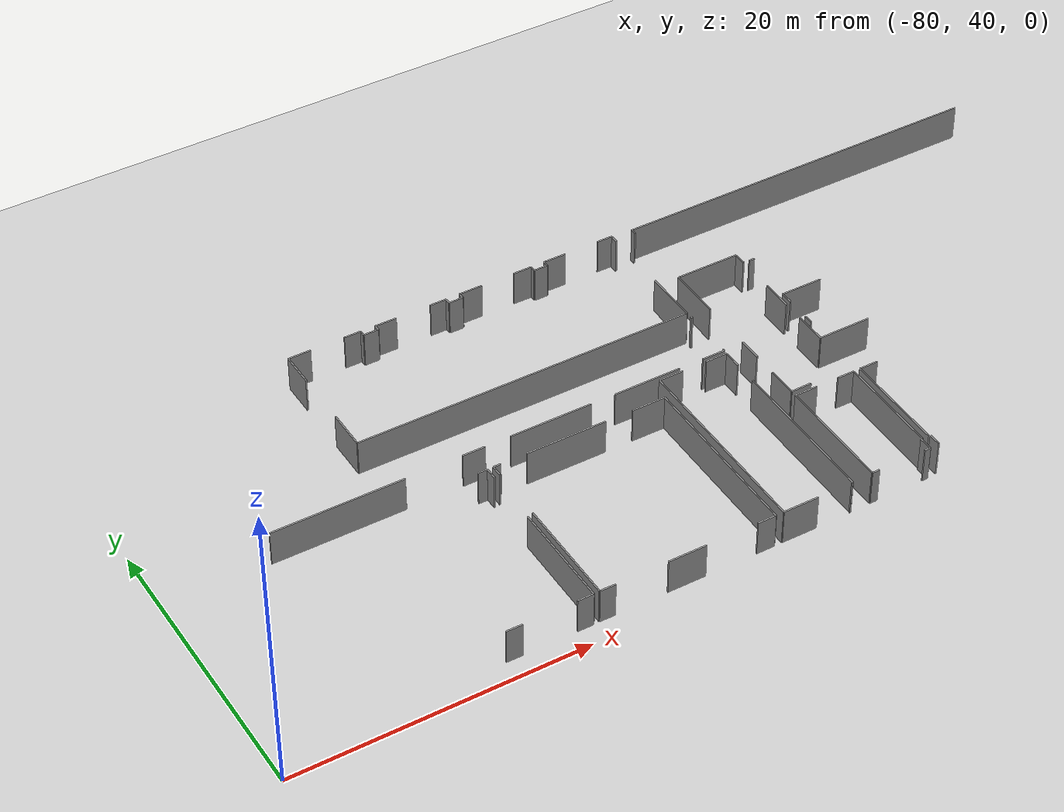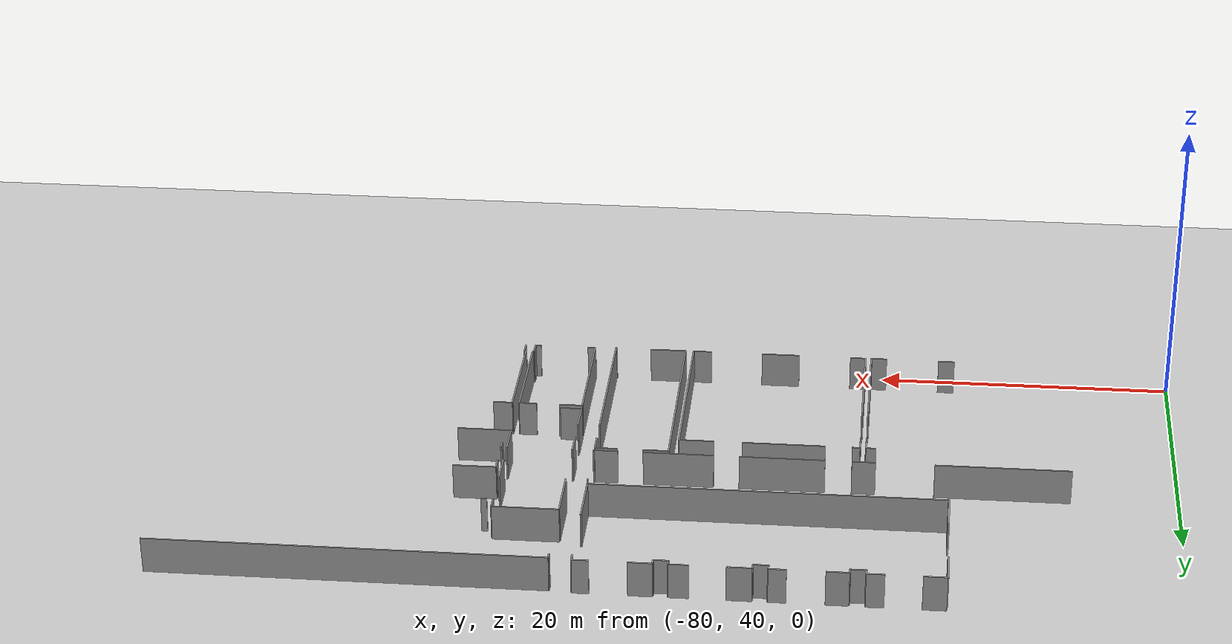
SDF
<sdf version="1.6">
 <world name="default">
  <model name="ground_plane">
   <static>1</static>
   <link name="link">
    <collision name="collision">
     <geometry><plane><normal>0 0 1</normal><size>100 100</size></plane></geometry>
     <surface><friction><ode><mu>100</mu><mu2>50</mu2></ode></friction></surface>
    </collision>
    <visual name="visual">
     <cast_shadows>0</cast_shadows>
     <geometry><plane><normal>0 0 1</normal><size>100 100</size></plane></geometry>
     <material>
      <script><uri>file://media/materials/scripts/gazebo.material</uri><name>Gazebo/Grey</name></script>
     </material>
    </visual>
   </link>
  </model>
  <model name="0510035520_A_40_1_103">
   <static>1</static>
   <link name="Wall_38">
    <collision name="Wall_38_Collision">
     <geometry><box><size>1.53679227924 0.1 2.5</size></box></geometry>
     <pose>0.768396139618 0 1.25 0 0 0</pose>
    </collision>
    <visual name="Wall_38_Visual">
     <pose>0.768396139618 0 1.25 0 0 0</pose>
     <geometry><box><size>1.53679227924 0.1 2.5</size></box></geometry>
     <material>
      <script><uri>file://media/materials/scripts/gazebo.material</uri><name>Gazebo/Grey</name></script>
      <ambient>1 1 1 1</ambient>
     </material>
    </visual>
    <pose>47.4512217562 -0.00329947145006 0 0 0 0.0</pose>
   </link>
   <link name="Wall_39">
    <collision name="Wall_39_Collision">
     <geometry><box><size>1.1761346692 0.1 2.5</size></box></geometry>
     <pose>0.588067334598 0 1.25 0 0 0</pose>
    </collision>
    <visual name="Wall_39_Visual">
     <pose>0.588067334598 0 1.25 0 0 0</pose>
     <geometry><box><size>1.1761346692 0.1 2.5</size></box></geometry>
     <material>
      <script><uri>file://media/materials/scripts/gazebo.material</uri><name>Gazebo/Grey</name></script>
      <ambient>1 1 1 1</ambient>
     </material>
    </visual>
    <pose>51.3687095894 -0.00329947145006 0 0 0 0.0</pose>
   </link>
   <link name="Wall_40">
    <collision name="Wall_40_Collision">
     <geometry><box><size>0.404058349884 0.1 2.5</size></box></geometry>
     <pose>0.202029174942 0 1.25 0 0 0</pose>
    </collision>
    <visual name="Wall_40_Visual">
     <pose>0.202029174942 0 1.25 0 0 0</pose>
     <geometry><box><size>0.404058349884 0.1 2.5</size></box></geometry>
     <material>
      <script><uri>file://media/materials/scripts/gazebo.material</uri><name>Gazebo/Grey</name></script>
      <ambient>1 1 1 1</ambient>
     </material>
    </visual>
    <pose>52.5448442586 -0.00329947145006 0 0 0 -1.57079632679</pose>
   </link>
   <link name="Wall_41">
    <collision name="Wall_41_Collision">
     <geometry><box><size>1.03171934188 0.1 2.5</size></box></geometry>
     <pose>0.515859670941 0 1.25 0 0 0</pose>
    </collision>
    <visual name="Wall_41_Visual">
     <pose>0.515859670941 0 1.25 0 0 0</pose>
     <geometry><box><size>1.03171934188 0.1 2.5</size></box></geometry>
     <material>
      <script><uri>file://media/materials/scripts/gazebo.material</uri><name>Gazebo/Grey</name></script>
      <ambient>1 1 1 1</ambient>
     </material>
    </visual>
    <pose>52.5448442586 -0.407357821334 0 0 0 0.0</pose>
   </link>
   <link name="Wall_42">
    <collision name="Wall_42_Collision">
     <geometry><box><size>0.38248488271 0.1 2.5</size></box></geometry>
     <pose>0.191242441355 0 1.25 0 0 0</pose>
    </collision>
    <visual name="Wall_42_Visual">
     <pose>0.191242441355 0 1.25 0 0 0</pose>
     <geometry><box><size>0.38248488271 0.1 2.5</size></box></geometry>
     <material>
      <script><uri>file://media/materials/scripts/gazebo.material</uri><name>Gazebo/Grey</name></script>
      <ambient>1 1 1 1</ambient>
     </material>
    </visual>
    <pose>53.5765636005 -0.407357821334 0 0 0 1.57079632679</pose>
   </link>
   <link name="Wall_43">
    <collision name="Wall_43_Collision">
     <geometry><box><size>1.49339153939 0.1 2.5</size></box></geometry>
     <pose>0.746695769697 0 1.25 0 0 0</pose>
    </collision>
    <visual name="Wall_43_Visual">
     <pose>0.746695769697 0 1.25 0 0 0</pose>
     <geometry><box><size>1.49339153939 0.1 2.5</size></box></geometry>
     <material>
      <script><uri>file://media/materials/scripts/gazebo.material</uri><name>Gazebo/Grey</name></script>
      <ambient>1 1 1 1</ambient>
     </material>
    </visual>
    <pose>53.5765636005 -0.0248729386235 0 0 0 0.0</pose>
   </link>
   <link name="Wall_44">
    <collision name="Wall_44_Collision">
     <geometry><box><size>1.15329217454 0.1 2.5</size></box></geometry>
     <pose>0.576646087271 0 1.25 0 0 0</pose>
    </collision>
    <visual name="Wall_44_Visual">
     <pose>0.576646087271 0 1.25 0 0 0</pose>
     <geometry><box><size>1.15329217454 0.1 2.5</size></box></geometry>
     <material>
      <script><uri>file://media/materials/scripts/gazebo.material</uri><name>Gazebo/Grey</name></script>
      <ambient>1 1 1 1</ambient>
     </material>
    </visual>
    <pose>57.5257771207 -0.0248729386235 0 0 0 0.0</pose>
   </link>
   <link name="Wall_45">
    <collision name="Wall_45_Collision">
     <geometry><box><size>0.401266489426 0.1 2.5</size></box></geometry>
     <pose>0.200633244713 0 1.25 0 0 0</pose>
    </collision>
    <visual name="Wall_45_Visual">
     <pose>0.200633244713 0 1.25 0 0 0</pose>
     <geometry><box><size>0.401266489426 0.1 2.5</size></box></geometry>
     <material>
      <script><uri>file://media/materials/scripts/gazebo.material</uri><name>Gazebo/Grey</name></script>
      <ambient>1 1 1 1</ambient>
     </material>
    </visual>
    <pose>58.6790692952 -0.0248729386235 0 0 0 -1.57079632679</pose>
   </link>
   <link name="Wall_46">
    <collision name="Wall_46_Collision">
     <geometry><box><size>0.995678961428 0.1 2.5</size></box></geometry>
     <pose>0.497839480714 0 1.25 0 0 0</pose>
    </collision>
    <visual name="Wall_46_Visual">
     <pose>0.497839480714 0 1.25 0 0 0</pose>
     <geometry><box><size>0.995678961428 0.1 2.5</size></box></geometry>
     <material>
      <script><uri>file://media/materials/scripts/gazebo.material</uri><name>Gazebo/Grey</name></script>
      <ambient>1 1 1 1</ambient>
     </material>
    </visual>
    <pose>58.6790692952 -0.426139428049 0 0 0 0.0</pose>
   </link>
   <link name="Wall_47">
    <collision name="Wall_47_Collision">
     <geometry><box><size>0.414971986218 0.1 2.5</size></box></geometry>
     <pose>0.207485993109 0 1.25 0 0 0</pose>
    </collision>
    <visual name="Wall_47_Visual">
     <pose>0.207485993109 0 1.25 0 0 0</pose>
     <geometry><box><size>0.414971986218 0.1 2.5</size></box></geometry>
     <material>
      <script><uri>file://media/materials/scripts/gazebo.material</uri><name>Gazebo/Grey</name></script>
      <ambient>1 1 1 1</ambient>
     </material>
    </visual>
    <pose>59.6747482567 -0.426139428049 0 0 0 1.57079632679</pose>
   </link>
   <link name="Wall_48">
    <collision name="Wall_48_Collision">
     <geometry><box><size>1.62613181388 0.1 2.5</size></box></geometry>
     <pose>0.813065906942 0 1.25 0 0 0</pose>
    </collision>
    <visual name="Wall_48_Visual">
     <pose>0.813065906942 0 1.25 0 0 0</pose>
     <geometry><box><size>1.62613181388 0.1 2.5</size></box></geometry>
     <material>
      <script><uri>file://media/materials/scripts/gazebo.material</uri><name>Gazebo/Grey</name></script>
      <ambient>1 1 1 1</ambient>
     </material>
    </visual>
    <pose>59.6747482567 -0.011167441831 0 0 0 0.0</pose>
   </link>
   <link name="Wall_49">
    <collision name="Wall_49_Collision">
     <geometry><box><size>1.31750433056 0.1 2.5</size></box></geometry>
     <pose>0.658752165278 0 1.25 0 0 0</pose>
    </collision>
    <visual name="Wall_49_Visual">
     <pose>0.658752165278 0 1.25 0 0 0</pose>
     <geometry><box><size>1.31750433056 0.1 2.5</size></box></geometry>
     <material>
      <script><uri>file://media/materials/scripts/gazebo.material</uri><name>Gazebo/Grey</name></script>
      <ambient>1 1 1 1</ambient>
     </material>
    </visual>
    <pose>63.6600021573 -0.011167441831 0 0 0 0.0</pose>
   </link>
   <link name="Wall_50">
    <collision name="Wall_50_Collision">
     <geometry><box><size>0.402789322403 0.1 2.5</size></box></geometry>
     <pose>0.201394661201 0 1.25 0 0 0</pose>
    </collision>
    <visual name="Wall_50_Visual">
     <pose>0.201394661201 0 1.25 0 0 0</pose>
     <geometry><box><size>0.402789322403 0.1 2.5</size></box></geometry>
     <material>
      <script><uri>file://media/materials/scripts/gazebo.material</uri><name>Gazebo/Grey</name></script>
      <ambient>1 1 1 1</ambient>
     </material>
    </visual>
    <pose>64.9775064879 -0.011167441831 0 0 0 -1.57079632679</pose>
   </link>
   <link name="Wall_51">
    <collision name="Wall_51_Collision">
     <geometry><box><size>0.96979080082 0.1 2.5</size></box></geometry>
     <pose>0.48489540041 0 1.25 0 0 0</pose>
    </collision>
    <visual name="Wall_51_Visual">
     <pose>0.48489540041 0 1.25 0 0 0</pose>
     <geometry><box><size>0.96979080082 0.1 2.5</size></box></geometry>
     <material>
      <script><uri>file://media/materials/scripts/gazebo.material</uri><name>Gazebo/Grey</name></script>
      <ambient>1 1 1 1</ambient>
     </material>
    </visual>
    <pose>64.9775064879 -0.413956764234 0 0 0 0.0</pose>
   </link>
   <link name="Wall_52">
    <collision name="Wall_52_Collision">
     <geometry><box><size>0.407865432326 0.1 2.5</size></box></geometry>
     <pose>0.203932716163 0 1.25 0 0 0</pose>
    </collision>
    <visual name="Wall_52_Visual">
     <pose>0.203932716163 0 1.25 0 0 0</pose>
     <geometry><box><size>0.407865432326 0.1 2.5</size></box></geometry>
     <material>
      <script><uri>file://media/materials/scripts/gazebo.material</uri><name>Gazebo/Grey</name></script>
      <ambient>1 1 1 1</ambient>
     </material>
    </visual>
    <pose>65.9472972887 -0.413956764234 0 0 0 1.57079632679</pose>
   </link>
   <link name="Wall_53">
    <collision name="Wall_53_Collision">
     <geometry><box><size>1.58349249053 0.1 2.5</size></box></geometry>
     <pose>0.791746245265 0 1.25 0 0 0</pose>
    </collision>
    <visual name="Wall_53_Visual">
     <pose>0.791746245265 0 1.25 0 0 0</pose>
     <geometry><box><size>1.58349249053 0.1 2.5</size></box></geometry>
     <material>
      <script><uri>file://media/materials/scripts/gazebo.material</uri><name>Gazebo/Grey</name></script>
      <ambient>1 1 1 1</ambient>
     </material>
    </visual>
    <pose>65.9472972887 -0.00609133190779 0 0 0 0.0</pose>
   </link>
   <link name="Wall_54">
    <collision name="Wall_54_Collision">
     <geometry><box><size>1.09517071592 0.1 2.5</size></box></geometry>
     <pose>0.547585357961 0 1.25 0 0 0</pose>
    </collision>
    <visual name="Wall_54_Visual">
     <pose>0.547585357961 0 1.25 0 0 0</pose>
     <geometry><box><size>1.09517071592 0.1 2.5</size></box></geometry>
     <material>
      <script><uri>file://media/materials/scripts/gazebo.material</uri><name>Gazebo/Grey</name></script>
      <ambient>1 1 1 1</ambient>
     </material>
    </visual>
    <pose>69.9795052062 -0.00609133190779 0 0 0 0.0</pose>
   </link>
   <link name="Wall_55">
    <collision name="Wall_55_Collision">
     <geometry><box><size>0.609133190779 0.1 2.5</size></box></geometry>
     <pose>0.30456659539 0 1.25 0 0 0</pose>
    </collision>
    <visual name="Wall_55_Visual">
     <pose>0.30456659539 0 1.25 0 0 0</pose>
     <geometry><box><size>0.609133190779 0.1 2.5</size></box></geometry>
     <material>
      <script><uri>file://media/materials/scripts/gazebo.material</uri><name>Gazebo/Grey</name></script>
      <ambient>1 1 1 1</ambient>
     </material>
    </visual>
    <pose>71.0746759221 -0.00609133190779 0 0 0 -1.57079632679</pose>
   </link>
   <link name="Wall_56">
    <collision name="Wall_56_Collision">
     <geometry><box><size>3.77484914436 0.1 2.5</size></box></geometry>
     <pose>1.88742457218 0 1.25 0 0 0</pose>
    </collision>
    <visual name="Wall_56_Visual">
     <pose>1.88742457218 0 1.25 0 0 0</pose>
     <geometry><box><size>3.77484914436 0.1 2.5</size></box></geometry>
     <material>
      <script><uri>file://media/materials/scripts/gazebo.material</uri><name>Gazebo/Grey</name></script>
      <ambient>1 1 1 1</ambient>
     </material>
    </visual>
    <pose>71.0746759221 -5.26747926726 0 0 0 -1.57079632679</pose>
   </link>
   <link name="Wall_57">
    <collision name="Wall_57_Collision">
     <geometry><box><size>23.6181242505 0.1 2.5</size></box></geometry>
     <pose>11.8090621252 0 1.25 0 0 0</pose>
    </collision>
    <visual name="Wall_57_Visual">
     <pose>11.8090621252 0 1.25 0 0 0</pose>
     <geometry><box><size>23.6181242505 0.1 2.5</size></box></geometry>
     <material>
      <script><uri>file://media/materials/scripts/gazebo.material</uri><name>Gazebo/Grey</name></script>
      <ambient>1 1 1 1</ambient>
     </material>
    </visual>
    <pose>71.0746759221 -9.04232841162 0 0 0 3.14159265359</pose>
   </link>
   <link name="Wall_58">
    <collision name="Wall_58_Collision">
     <geometry><box><size>2.80201267758 0.1 2.5</size></box></geometry>
     <pose>1.40100633879 0 1.25 0 0 0</pose>
    </collision>
    <visual name="Wall_58_Visual">
     <pose>1.40100633879 0 1.25 0 0 0</pose>
     <geometry><box><size>2.80201267758 0.1 2.5</size></box></geometry>
     <material>
      <script><uri>file://media/materials/scripts/gazebo.material</uri><name>Gazebo/Grey</name></script>
      <ambient>1 1 1 1</ambient>
     </material>
    </visual>
    <pose>47.4565516716 -9.04232841162 0 0 0 1.57079632679</pose>
   </link>
   <link name="Wall_59">
    <collision name="Wall_59_Collision">
     <geometry><box><size>2.38095532514 0.1 2.5</size></box></geometry>
     <pose>1.19047766257 0 1.25 0 0 0</pose>
    </collision>
    <visual name="Wall_59_Visual">
     <pose>1.19047766257 0 1.25 0 0 0</pose>
     <geometry><box><size>2.38095532514 0.1 2.5</size></box></geometry>
     <material>
      <script><uri>file://media/materials/scripts/gazebo.material</uri><name>Gazebo/Grey</name></script>
      <ambient>1 1 1 1</ambient>
     </material>
    </visual>
    <pose>47.4565516716 -2.38424883091 0 0 0 1.57303489037</pose>
   </link>
   <link name="Wall_60">
    <collision name="Wall_60_Collision">
     <geometry><box><size>13.6532128603 0.1 2.5</size></box></geometry>
     <pose>6.82660643016 0 1.25 0 0 0</pose>
    </collision>
    <visual name="Wall_60_Visual">
     <pose>6.82660643016 0 1.25 0 0 0</pose>
     <geometry><box><size>13.6532128603 0.1 2.5</size></box></geometry>
     <material>
      <script><uri>file://media/materials/scripts/gazebo.material</uri><name>Gazebo/Grey</name></script>
      <ambient>1 1 1 1</ambient>
     </material>
    </visual>
    <pose>66.1379052163 -27.2465276236 0 0 0 1.57079632679</pose>
   </link>
   <link name="Wall_61">
    <collision name="Wall_61_Collision">
     <geometry><box><size>1.70938001662 0.1 2.5</size></box></geometry>
     <pose>0.854690008312 0 1.25 0 0 0</pose>
    </collision>
    <visual name="Wall_61_Visual">
     <pose>0.854690008312 0 1.25 0 0 0</pose>
     <geometry><box><size>1.70938001662 0.1 2.5</size></box></geometry>
     <material>
      <script><uri>file://media/materials/scripts/gazebo.material</uri><name>Gazebo/Grey</name></script>
      <ambient>1 1 1 1</ambient>
     </material>
    </visual>
    <pose>66.1379052163 -13.5933147632 0 0 0 0.0</pose>
   </link>
   <link name="Wall_62">
    <collision name="Wall_62_Collision">
     <geometry><box><size>1.51877208901 0.1 2.5</size></box></geometry>
     <pose>0.759386044505 0 1.25 0 0 0</pose>
    </collision>
    <visual name="Wall_62_Visual">
     <pose>0.759386044505 0 1.25 0 0 0</pose>
     <geometry><box><size>1.51877208901 0.1 2.5</size></box></geometry>
     <material>
      <script><uri>file://media/materials/scripts/gazebo.material</uri><name>Gazebo/Grey</name></script>
      <ambient>1 1 1 1</ambient>
     </material>
    </visual>
    <pose>69.5642794145 -13.5933147632 0 0 0 0.0</pose>
   </link>
   <link name="Wall_63">
    <collision name="Wall_63_Collision">
     <geometry><box><size>1.30278361178 0.1 2.5</size></box></geometry>
     <pose>0.65139180589 0 1.25 0 0 0</pose>
    </collision>
    <visual name="Wall_63_Visual">
     <pose>0.65139180589 0 1.25 0 0 0</pose>
     <geometry><box><size>1.30278361178 0.1 2.5</size></box></geometry>
     <material>
      <script><uri>file://media/materials/scripts/gazebo.material</uri><name>Gazebo/Grey</name></script>
      <ambient>1 1 1 1</ambient>
     </material>
    </visual>
    <pose>71.0830515035 -13.5933147632 0 0 0 -1.57079632679</pose>
   </link>
   <link name="Wall_64">
    <collision name="Wall_64_Collision">
     <geometry><box><size>10.7405409864 0.1 2.5</size></box></geometry>
     <pose>5.37027049321 0 1.25 0 0 0</pose>
    </collision>
    <visual name="Wall_64_Visual">
     <pose>5.37027049321 0 1.25 0 0 0</pose>
     <geometry><box><size>10.7405409864 0.1 2.5</size></box></geometry>
     <material>
      <script><uri>file://media/materials/scripts/gazebo.material</uri><name>Gazebo/Grey</name></script>
      <ambient>1 1 1 1</ambient>
     </material>
    </visual>
    <pose>71.0830515035 -16.5059866371 0 0 0 -1.57079632679</pose>
   </link>
   <link name="Wall_65">
    <collision name="Wall_65_Collision">
     <geometry><box><size>0.0890857291515 0.1 2.5</size></box></geometry>
     <pose>0.0445428645757 0 1.25 0 0 0</pose>
    </collision>
    <visual name="Wall_65_Visual">
     <pose>0.0445428645757 0 1.25 0 0 0</pose>
     <geometry><box><size>0.0890857291515 0.1 2.5</size></box></geometry>
     <material>
      <script><uri>file://media/materials/scripts/gazebo.material</uri><name>Gazebo/Grey</name></script>
      <ambient>1 1 1 1</ambient>
     </material>
    </visual>
    <pose>71.0830515035 -27.2465276236 0 0 0 3.14159265359</pose>
   </link>
   <link name="Wall_66">
    <collision name="Wall_66_Collision">
     <geometry><box><size>2.45531436983 0.1 2.5</size></box></geometry>
     <pose>1.22765718492 0 1.25 0 0 0</pose>
    </collision>
    <visual name="Wall_66_Visual">
     <pose>1.22765718492 0 1.25 0 0 0</pose>
     <geometry><box><size>2.45531436983 0.1 2.5</size></box></geometry>
     <material>
      <script><uri>file://media/materials/scripts/gazebo.material</uri><name>Gazebo/Grey</name></script>
      <ambient>1 1 1 1</ambient>
     </material>
    </visual>
    <pose>68.5932195862 -27.2465276236 0 0 0 3.14159265359</pose>
   </link>
   <link name="Wall_67">
    <collision name="Wall_67_Collision">
     <geometry><box><size>7.51315029727 0.1 2.5</size></box></geometry>
     <pose>3.75657514863 0 1.25 0 0 0</pose>
    </collision>
    <visual name="Wall_67_Visual">
     <pose>3.75657514863 0 1.25 0 0 0</pose>
     <geometry><box><size>7.51315029727 0.1 2.5</size></box></geometry>
     <material>
      <script><uri>file://media/materials/scripts/gazebo.material</uri><name>Gazebo/Grey</name></script>
      <ambient>1 1 1 1</ambient>
     </material>
    </visual>
    <pose>53.4301178292 -27.2307916828 0 0 0 1.57079632679</pose>
   </link>
   <link name="Wall_68">
    <collision name="Wall_68_Collision">
     <geometry><box><size>0.77156870832 0.1 2.5</size></box></geometry>
     <pose>0.38578435416 0 1.25 0 0 0</pose>
    </collision>
    <visual name="Wall_68_Visual">
     <pose>0.38578435416 0 1.25 0 0 0</pose>
     <geometry><box><size>0.77156870832 0.1 2.5</size></box></geometry>
     <material>
      <script><uri>file://media/materials/scripts/gazebo.material</uri><name>Gazebo/Grey</name></script>
      <ambient>1 1 1 1</ambient>
     </material>
    </visual>
    <pose>53.4301178292 -15.8666505923 0 0 0 1.57079632679</pose>
   </link>
   <link name="Wall_69">
    <collision name="Wall_69_Collision">
     <geometry><box><size>0.511418074758 0.1 2.5</size></box></geometry>
     <pose>0.255709037379 0 1.25 0 0 0</pose>
    </collision>
    <visual name="Wall_69_Visual">
     <pose>0.255709037379 0 1.25 0 0 0</pose>
     <geometry><box><size>0.511418074758 0.1 2.5</size></box></geometry>
     <material>
      <script><uri>file://media/materials/scripts/gazebo.material</uri><name>Gazebo/Grey</name></script>
      <ambient>1 1 1 1</ambient>
     </material>
    </visual>
    <pose>53.4301178292 -15.095081884 0 0 0 0.0</pose>
   </link>
   <link name="Wall_70">
    <collision name="Wall_70_Collision">
     <geometry><box><size>5.56773116922 0.1 2.5</size></box></geometry>
     <pose>2.78386558461 0 1.25 0 0 0</pose>
    </collision>
    <visual name="Wall_70_Visual">
     <pose>2.78386558461 0 1.25 0 0 0</pose>
     <geometry><box><size>5.56773116922 0.1 2.5</size></box></geometry>
     <material>
      <script><uri>file://media/materials/scripts/gazebo.material</uri><name>Gazebo/Grey</name></script>
      <ambient>1 1 1 1</ambient>
     </material>
    </visual>
    <pose>55.7458391761 -15.095081884 0 0 0 0.0</pose>
   </link>
   <link name="Wall_71">
    <collision name="Wall_71_Collision">
     <geometry><box><size>2.34287853503 0.1 2.5</size></box></geometry>
     <pose>1.17143926752 0 1.25 0 0 0</pose>
    </collision>
    <visual name="Wall_71_Visual">
     <pose>1.17143926752 0 1.25 0 0 0</pose>
     <geometry><box><size>2.34287853503 0.1 2.5</size></box></geometry>
     <material>
      <script><uri>file://media/materials/scripts/gazebo.material</uri><name>Gazebo/Grey</name></script>
      <ambient>1 1 1 1</ambient>
     </material>
    </visual>
    <pose>63.2298018414 -15.095081884 0 0 0 0.0</pose>
   </link>
   <link name="Wall_72">
    <collision name="Wall_72_Collision">
     <geometry><box><size>12.158298488 0.1 2.5</size></box></geometry>
     <pose>6.07914924398 0 1.25 0 0 0</pose>
    </collision>
    <visual name="Wall_72_Visual">
     <pose>6.07914924398 0 1.25 0 0 0</pose>
     <geometry><box><size>12.158298488 0.1 2.5</size></box></geometry>
     <material>
      <script><uri>file://media/materials/scripts/gazebo.material</uri><name>Gazebo/Grey</name></script>
      <ambient>1 1 1 1</ambient>
     </material>
    </visual>
    <pose>65.5726803764 -15.095081884 0 0 0 -1.57079632679</pose>
   </link>
   <link name="Wall_73">
    <collision name="Wall_73_Collision">
     <geometry><box><size>1.26775845331 0.1 2.5</size></box></geometry>
     <pose>0.633879226655 0 1.25 0 0 0</pose>
    </collision>
    <visual name="Wall_73_Visual">
     <pose>0.633879226655 0 1.25 0 0 0</pose>
     <geometry><box><size>1.26775845331 0.1 2.5</size></box></geometry>
     <material>
      <script><uri>file://media/materials/scripts/gazebo.material</uri><name>Gazebo/Grey</name></script>
      <ambient>1 1 1 1</ambient>
     </material>
    </visual>
    <pose>65.5726803764 -27.253380372 0 0 0 3.14159265359</pose>
   </link>
   <link name="Wall_74">
    <collision name="Wall_74_Collision">
     <geometry><box><size>2.63348582814 0.1 2.5</size></box></geometry>
     <pose>1.31674291407 0 1.25 0 0 0</pose>
    </collision>
    <visual name="Wall_74_Visual">
     <pose>1.31674291407 0 1.25 0 0 0</pose>
     <geometry><box><size>2.63348582814 0.1 2.5</size></box></geometry>
     <material>
      <script><uri>file://media/materials/scripts/gazebo.material</uri><name>Gazebo/Grey</name></script>
      <ambient>1 1 1 1</ambient>
     </material>
    </visual>
    <pose>60.7191578734 -27.253380372 0 0 0 3.14159265359</pose>
   </link>
   <link name="Wall_75">
    <collision name="Wall_75_Collision">
     <geometry><box><size>1.0720586129 0.1 2.5</size></box></geometry>
     <pose>0.536029306449 0 1.25 0 0 0</pose>
    </collision>
    <visual name="Wall_75_Visual">
     <pose>0.536029306449 0 1.25 0 0 0</pose>
     <geometry><box><size>1.0720586129 0.1 2.5</size></box></geometry>
     <material>
      <script><uri>file://media/materials/scripts/gazebo.material</uri><name>Gazebo/Grey</name></script>
      <ambient>1 1 1 1</ambient>
     </material>
    </visual>
    <pose>54.5019384395 -27.253380372 0 0 0 3.12052070786</pose>
   </link>
   <link name="Wall_79">
    <collision name="Wall_79_Collision">
     <geometry><box><size>0.664970399934 0.1 2.5</size></box></geometry>
     <pose>0.332485199967 0 1.25 0 0 0</pose>
    </collision>
    <visual name="Wall_79_Visual">
     <pose>0.332485199967 0 1.25 0 0 0</pose>
     <geometry><box><size>0.664970399934 0.1 2.5</size></box></geometry>
     <material>
      <script><uri>file://media/materials/scripts/gazebo.material</uri><name>Gazebo/Grey</name></script>
      <ambient>1 1 1 1</ambient>
     </material>
    </visual>
    <pose>52.3610890794 -15.0943204675 0 0 0 0.0</pose>
   </link>
   <link name="Wall_80">
    <collision name="Wall_80_Collision">
     <geometry><box><size>0.830451583429 0.1 2.5</size></box></geometry>
     <pose>0.415225791715 0 1.25 0 0 0</pose>
    </collision>
    <visual name="Wall_80_Visual">
     <pose>0.415225791715 0 1.25 0 0 0</pose>
     <geometry><box><size>0.830451583429 0.1 2.5</size></box></geometry>
     <material>
      <script><uri>file://media/materials/scripts/gazebo.material</uri><name>Gazebo/Grey</name></script>
      <ambient>1 1 1 1</ambient>
     </material>
    </visual>
    <pose>53.0260594793 -15.0943204675 0 0 0 -1.57079632679</pose>
   </link>
   <link name="Wall_81">
    <collision name="Wall_81_Collision">
     <geometry><box><size>7.44259236934 0.1 2.5</size></box></geometry>
     <pose>3.72129618467 0 1.25 0 0 0</pose>
    </collision>
    <visual name="Wall_81_Visual">
     <pose>3.72129618467 0 1.25 0 0 0</pose>
     <geometry><box><size>7.44259236934 0.1 2.5</size></box></geometry>
     <material>
      <script><uri>file://media/materials/scripts/gazebo.material</uri><name>Gazebo/Grey</name></script>
      <ambient>1 1 1 1</ambient>
     </material>
    </visual>
    <pose>53.0260594793 -19.8168793345 0 0 0 -1.57079632679</pose>
   </link>
   <link name="Wall_82">
    <collision name="Wall_82_Collision">
     <geometry><box><size>1.08933318951 0.1 2.5</size></box></geometry>
     <pose>0.544666594755 0 1.25 0 0 0</pose>
    </collision>
    <visual name="Wall_82_Visual">
     <pose>0.544666594755 0 1.25 0 0 0</pose>
     <geometry><box><size>1.08933318951 0.1 2.5</size></box></geometry>
     <material>
      <script><uri>file://media/materials/scripts/gazebo.material</uri><name>Gazebo/Grey</name></script>
      <ambient>1 1 1 1</ambient>
     </material>
    </visual>
    <pose>53.0260594793 -27.2594717039 0 0 0 3.14159265359</pose>
   </link>
   <link name="Wall_83">
    <collision name="Wall_83_Collision">
     <geometry><box><size>1.11373810848 0.1 2.5</size></box></geometry>
     <pose>0.556869054238 0 1.25 0 0 0</pose>
    </collision>
    <visual name="Wall_83_Visual">
     <pose>0.556869054238 0 1.25 0 0 0</pose>
     <geometry><box><size>1.11373810848 0.1 2.5</size></box></geometry>
     <material>
      <script><uri>file://media/materials/scripts/gazebo.material</uri><name>Gazebo/Grey</name></script>
      <ambient>1 1 1 1</ambient>
     </material>
    </visual>
    <pose>48.3098457497 -27.2594717039 0 0 0 3.13316076591</pose>
   </link>
   <link name="Wall_108">
    <collision name="Wall_108_Collision">
     <geometry><box><size>0.188069872653 0.1 2.5</size></box></geometry>
     <pose>0.0940349363265 0 1.25 0 0 0</pose>
    </collision>
    <visual name="Wall_108_Visual">
     <pose>0.0940349363265 0 1.25 0 0 0</pose>
     <geometry><box><size>0.188069872653 0.1 2.5</size></box></geometry>
     <material>
      <script><uri>file://media/materials/scripts/gazebo.material</uri><name>Gazebo/Grey</name></script>
      <ambient>1 1 1 1</ambient>
     </material>
    </visual>
    <pose>71.1104624971 -9.44816339998 0 0 0 -1.57079632679</pose>
   </link>
   <link name="Wall_109">
    <collision name="Wall_109_Collision">
     <geometry><box><size>0.144161521818 0.1 2.5</size></box></geometry>
     <pose>0.0720807609089 0 1.25 0 0 0</pose>
    </collision>
    <visual name="Wall_109_Visual">
     <pose>0.0720807609089 0 1.25 0 0 0</pose>
     <geometry><box><size>0.144161521818 0.1 2.5</size></box></geometry>
     <material>
      <script><uri>file://media/materials/scripts/gazebo.material</uri><name>Gazebo/Grey</name></script>
      <ambient>1 1 1 1</ambient>
     </material>
    </visual>
    <pose>71.1104624971 -13.1433176185 0 0 0 -1.57079632679</pose>
   </link>
   <link name="Wall_110">
    <collision name="Wall_110_Collision">
     <geometry><box><size>1.60354312473 0.1 2.5</size></box></geometry>
     <pose>0.801771562363 0 1.25 0 0 0</pose>
    </collision>
    <visual name="Wall_110_Visual">
     <pose>0.801771562363 0 1.25 0 0 0</pose>
     <geometry><box><size>1.60354312473 0.1 2.5</size></box></geometry>
     <material>
      <script><uri>file://media/materials/scripts/gazebo.material</uri><name>Gazebo/Grey</name></script>
      <ambient>1 1 1 1</ambient>
     </material>
    </visual>
    <pose>71.1104624971 -13.2874791404 0 0 0 3.14159265359</pose>
   </link>
   <link name="Wall_111">
    <collision name="Wall_111_Collision">
     <geometry><box><size>4.72611214396 0.1 2.5</size></box></geometry>
     <pose>2.36305607198 0 1.25 0 0 0</pose>
    </collision>
    <visual name="Wall_111_Visual">
     <pose>2.36305607198 0 1.25 0 0 0</pose>
     <geometry><box><size>4.72611214396 0.1 2.5</size></box></geometry>
     <material>
      <script><uri>file://media/materials/scripts/gazebo.material</uri><name>Gazebo/Grey</name></script>
      <ambient>1 1 1 1</ambient>
     </material>
    </visual>
    <pose>67.8193666284 -13.2874791404 0 0 0 3.14159265359</pose>
   </link>
   <link name="Wall_112">
    <collision name="Wall_112_Collision">
     <geometry><box><size>5.71874543943 0.1 2.5</size></box></geometry>
     <pose>2.85937271972 0 1.25 0 0 0</pose>
    </collision>
    <visual name="Wall_112_Visual">
     <pose>2.85937271972 0 1.25 0 0 0</pose>
     <geometry><box><size>5.71874543943 0.1 2.5</size></box></geometry>
     <material>
      <script><uri>file://media/materials/scripts/gazebo.material</uri><name>Gazebo/Grey</name></script>
      <ambient>1 1 1 1</ambient>
     </material>
    </visual>
    <pose>61.3973261591 -13.2874791404 0 0 0 3.14159265359</pose>
   </link>
   <link name="Wall_113">
    <collision name="Wall_113_Collision">
     <geometry><box><size>1.57283265969 0.1 2.5</size></box></geometry>
     <pose>0.786416329846 0 1.25 0 0 0</pose>
    </collision>
    <visual name="Wall_113_Visual">
     <pose>0.786416329846 0 1.25 0 0 0</pose>
     <geometry><box><size>1.57283265969 0.1 2.5</size></box></geometry>
     <material>
      <script><uri>file://media/materials/scripts/gazebo.material</uri><name>Gazebo/Grey</name></script>
      <ambient>1 1 1 1</ambient>
     </material>
    </visual>
    <pose>53.9011808301 -13.2874791404 0 0 0 3.14159265359</pose>
   </link>
   <link name="Wall_114">
    <collision name="Wall_114_Collision">
     <geometry><box><size>9.06187143483 0.1 2.5</size></box></geometry>
     <pose>4.53093571741 0 1.25 0 0 0</pose>
    </collision>
    <visual name="Wall_114_Visual">
     <pose>4.53093571741 0 1.25 0 0 0</pose>
     <geometry><box><size>9.06187143483 0.1 2.5</size></box></geometry>
     <material>
      <script><uri>file://media/materials/scripts/gazebo.material</uri><name>Gazebo/Grey</name></script>
      <ambient>1 1 1 1</ambient>
     </material>
    </visual>
    <pose>48.4207587515 -13.2874791404 0 0 0 3.14159265359</pose>
   </link>
   <link name="Wall_126">
    <collision name="Wall_126_Collision">
     <geometry><box><size>26.1168393602 0.1 2.5</size></box></geometry>
     <pose>13.0584196801 0 1.25 0 0 0</pose>
    </collision>
    <visual name="Wall_126_Visual">
     <pose>13.0584196801 0 1.25 0 0 0</pose>
     <geometry><box><size>26.1168393602 0.1 2.5</size></box></geometry>
     <material>
      <script><uri>file://media/materials/scripts/gazebo.material</uri><name>Gazebo/Grey</name></script>
      <ambient>1 1 1 1</ambient>
     </material>
    </visual>
    <pose>72.5495396603 -0.120303805179 0 0 0 0.0</pose>
   </link>
   <link name="Wall_130">
    <collision name="Wall_130_Collision">
     <geometry><box><size>0.407149584349 0.1 2.5</size></box></geometry>
     <pose>0.203574792174 0 1.25 0 0 0</pose>
    </collision>
    <visual name="Wall_130_Visual">
     <pose>0.203574792174 0 1.25 0 0 0</pose>
     <geometry><box><size>0.407149584349 0.1 2.5</size></box></geometry>
     <material>
      <script><uri>file://media/materials/scripts/gazebo.material</uri><name>Gazebo/Grey</name></script>
      <ambient>1 1 1 1</ambient>
     </material>
    </visual>
    <pose>72.5434483284 -0.527407821016 0 0 0 1.55583484973</pose>
   </link>
   <link name="Wall_163">
    <collision name="Wall_163_Collision">
     <geometry><box><size>8.08091319218 0.1 2.5</size></box></geometry>
     <pose>4.04045659609 0 1.25 0 0 0</pose>
    </collision>
    <visual name="Wall_163_Visual">
     <pose>4.04045659609 0 1.25 0 0 0</pose>
     <geometry><box><size>8.08091319218 0.1 2.5</size></box></geometry>
     <material>
      <script><uri>file://media/materials/scripts/gazebo.material</uri><name>Gazebo/Grey</name></script>
      <ambient>1 1 1 1</ambient>
     </material>
    </visual>
    <pose>72.5558847977 -27.1335841778 0 0 0 1.57079632679</pose>
   </link>
   <link name="Wall_164">
    <collision name="Wall_164_Collision">
     <geometry><box><size>1.58882240595 0.1 2.5</size></box></geometry>
     <pose>0.794411202975 0 1.25 0 0 0</pose>
    </collision>
    <visual name="Wall_164_Visual">
     <pose>0.794411202975 0 1.25 0 0 0</pose>
     <geometry><box><size>1.58882240595 0.1 2.5</size></box></geometry>
     <material>
      <script><uri>file://media/materials/scripts/gazebo.material</uri><name>Gazebo/Grey</name></script>
      <ambient>1 1 1 1</ambient>
     </material>
    </visual>
    <pose>72.5558847977 -19.0526709856 0 0 0 0.0</pose>
   </link>
   <link name="Wall_165">
    <collision name="Wall_165_Collision">
     <geometry><box><size>1.21141363316 0.1 2.5</size></box></geometry>
     <pose>0.605706816581 0 1.25 0 0 0</pose>
    </collision>
    <visual name="Wall_165_Visual">
     <pose>0.605706816581 0 1.25 0 0 0</pose>
     <geometry><box><size>1.21141363316 0.1 2.5</size></box></geometry>
     <material>
      <script><uri>file://media/materials/scripts/gazebo.material</uri><name>Gazebo/Grey</name></script>
      <ambient>1 1 1 1</ambient>
     </material>
    </visual>
    <pose>75.6962202016 -19.0526709856 0 0 0 0.0</pose>
   </link>
   <link name="Wall_166">
    <collision name="Wall_166_Collision">
     <geometry><box><size>7.19056351165 0.1 2.5</size></box></geometry>
     <pose>3.59528175583 0 1.25 0 0 0</pose>
    </collision>
    <visual name="Wall_166_Visual">
     <pose>3.59528175583 0 1.25 0 0 0</pose>
     <geometry><box><size>7.19056351165 0.1 2.5</size></box></geometry>
     <material>
      <script><uri>file://media/materials/scripts/gazebo.material</uri><name>Gazebo/Grey</name></script>
      <ambient>1 1 1 1</ambient>
     </material>
    </visual>
    <pose>76.9076338348 -19.0526709856 0 0 0 -1.57079632679</pose>
   </link>
   <link name="Wall_167">
    <collision name="Wall_167_Collision">
     <geometry><box><size>0.0923852006015 0.1 2.5</size></box></geometry>
     <pose>0.0461926003008 0 1.25 0 0 0</pose>
    </collision>
    <visual name="Wall_167_Visual">
     <pose>0.0461926003008 0 1.25 0 0 0</pose>
     <geometry><box><size>0.0923852006015 0.1 2.5</size></box></geometry>
     <material>
      <script><uri>file://media/materials/scripts/gazebo.material</uri><name>Gazebo/Grey</name></script>
      <ambient>1 1 1 1</ambient>
     </material>
    </visual>
    <pose>76.9076338348 -26.2432344972 0 0 0 3.14159265359</pose>
   </link>
   <link name="Wall_168">
    <collision name="Wall_168_Collision">
     <geometry><box><size>0.923598200519 0.1 2.5</size></box></geometry>
     <pose>0.46179910026 0 1.25 0 0 0</pose>
    </collision>
    <visual name="Wall_168_Visual">
     <pose>0.46179910026 0 1.25 0 0 0</pose>
     <geometry><box><size>0.923598200519 0.1 2.5</size></box></geometry>
     <material>
      <script><uri>file://media/materials/scripts/gazebo.material</uri><name>Gazebo/Grey</name></script>
      <ambient>1 1 1 1</ambient>
     </material>
    </visual>
    <pose>76.8152486342 -26.2432344972 0 0 0 -1.57079632679</pose>
   </link>
   <link name="Wall_169">
    <collision name="Wall_169_Collision">
     <geometry><box><size>0.404058349884 0.1 2.5</size></box></geometry>
     <pose>0.202029174942 0 1.25 0 0 0</pose>
    </collision>
    <visual name="Wall_169_Visual">
     <pose>0.202029174942 0 1.25 0 0 0</pose>
     <geometry><box><size>0.404058349884 0.1 2.5</size></box></geometry>
     <material>
      <script><uri>file://media/materials/scripts/gazebo.material</uri><name>Gazebo/Grey</name></script>
      <ambient>1 1 1 1</ambient>
     </material>
    </visual>
    <pose>76.8152486342 -27.1668326978 0 0 0 3.14159265359</pose>
   </link>
   <link name="Wall_170">
    <collision name="Wall_170_Collision">
     <geometry><box><size>0.520808878116 0.1 2.5</size></box></geometry>
     <pose>0.260404439058 0 1.25 0 0 0</pose>
    </collision>
    <visual name="Wall_170_Visual">
     <pose>0.260404439058 0 1.25 0 0 0</pose>
     <geometry><box><size>0.520808878116 0.1 2.5</size></box></geometry>
     <material>
      <script><uri>file://media/materials/scripts/gazebo.material</uri><name>Gazebo/Grey</name></script>
      <ambient>1 1 1 1</ambient>
     </material>
    </visual>
    <pose>73.0766936758 -27.1668326978 0 0 0 3.14159265359</pose>
   </link>
   <link name="Wall_171">
    <collision name="Wall_171_Collision">
     <geometry><box><size>0.0332485199967 0.1 2.5</size></box></geometry>
     <pose>0.0166242599983 0 1.25 0 0 0</pose>
    </collision>
    <visual name="Wall_171_Visual">
     <pose>0.0166242599983 0 1.25 0 0 0</pose>
     <geometry><box><size>0.0332485199967 0.1 2.5</size></box></geometry>
     <material>
      <script><uri>file://media/materials/scripts/gazebo.material</uri><name>Gazebo/Grey</name></script>
      <ambient>1 1 1 1</ambient>
     </material>
    </visual>
    <pose>72.5558847977 -27.1668326978 0 0 0 1.57079632679</pose>
   </link>
   <link name="Wall_172">
    <collision name="Wall_172_Collision">
     <geometry><box><size>7.21467503379 0.1 2.5</size></box></geometry>
     <pose>3.60733751689 0 1.25 0 0 0</pose>
    </collision>
    <visual name="Wall_172_Visual">
     <pose>3.60733751689 0 1.25 0 0 0</pose>
     <geometry><box><size>7.21467503379 0.1 2.5</size></box></geometry>
     <material>
      <script><uri>file://media/materials/scripts/gazebo.material</uri><name>Gazebo/Grey</name></script>
      <ambient>1 1 1 1</ambient>
     </material>
    </visual>
    <pose>77.3850419731 -26.2577014105 0 0 0 1.57079632679</pose>
   </link>
   <link name="Wall_173">
    <collision name="Wall_173_Collision">
     <geometry><box><size>1.29872272384 0.1 2.5</size></box></geometry>
     <pose>0.64936136192 0 1.25 0 0 0</pose>
    </collision>
    <visual name="Wall_173_Visual">
     <pose>0.64936136192 0 1.25 0 0 0</pose>
     <geometry><box><size>1.29872272384 0.1 2.5</size></box></geometry>
     <material>
      <script><uri>file://media/materials/scripts/gazebo.material</uri><name>Gazebo/Grey</name></script>
      <ambient>1 1 1 1</ambient>
     </material>
    </visual>
    <pose>77.3850419731 -19.0430263767 0 0 0 0.0</pose>
   </link>
   <link name="Wall_180">
    <collision name="Wall_180_Collision">
     <geometry><box><size>0.846187524191 0.1 2.5</size></box></geometry>
     <pose>0.423093762095 0 1.25 0 0 0</pose>
    </collision>
    <visual name="Wall_180_Visual">
     <pose>0.423093762095 0 1.25 0 0 0</pose>
     <geometry><box><size>0.846187524191 0.1 2.5</size></box></geometry>
     <material>
      <script><uri>file://media/materials/scripts/gazebo.material</uri><name>Gazebo/Grey</name></script>
      <ambient>1 1 1 1</ambient>
     </material>
    </visual>
    <pose>77.4967163914 -27.117340626 0 0 0 1.57079632679</pose>
   </link>
   <link name="Wall_217">
    <collision name="Wall_217_Collision">
     <geometry><box><size>0.400505072937 0.1 2.5</size></box></geometry>
     <pose>0.200252536469 0 1.25 0 0 0</pose>
    </collision>
    <visual name="Wall_217_Visual">
     <pose>0.200252536469 0 1.25 0 0 0</pose>
     <geometry><box><size>0.400505072937 0.1 2.5</size></box></geometry>
     <material>
      <script><uri>file://media/materials/scripts/gazebo.material</uri><name>Gazebo/Grey</name></script>
      <ambient>1 1 1 1</ambient>
     </material>
    </visual>
    <pose>77.3698136433 -6.68193729735 0 0 0 0.0</pose>
   </link>
   <link name="Wall_219">
    <collision name="Wall_219_Collision">
     <geometry><box><size>2.89312885071 0.1 2.5</size></box></geometry>
     <pose>1.44656442535 0 1.25 0 0 0</pose>
    </collision>
    <visual name="Wall_219_Visual">
     <pose>1.44656442535 0 1.25 0 0 0</pose>
     <geometry><box><size>2.89312885071 0.1 2.5</size></box></geometry>
     <material>
      <script><uri>file://media/materials/scripts/gazebo.material</uri><name>Gazebo/Grey</name></script>
      <ambient>1 1 1 1</ambient>
     </material>
    </visual>
    <pose>77.3274281255 -10.60170938 0 0 0 0.0</pose>
   </link>
   <link name="Wall_222">
    <collision name="Wall_222_Collision">
     <geometry><box><size>0.629945241464 0.1 2.5</size></box></geometry>
     <pose>0.314972620732 0 1.25 0 0 0</pose>
    </collision>
    <visual name="Wall_222_Visual">
     <pose>0.314972620732 0 1.25 0 0 0</pose>
     <geometry><box><size>0.629945241464 0.1 2.5</size></box></geometry>
     <material>
      <script><uri>file://media/materials/scripts/gazebo.material</uri><name>Gazebo/Grey</name></script>
      <ambient>1 1 1 1</ambient>
     </material>
    </visual>
    <pose>77.3411336222 -13.7963591602 0 0 0 1.57079632679</pose>
   </link>
   <link name="Wall_223">
    <collision name="Wall_223_Collision">
     <geometry><box><size>0.844268332185 0.1 2.5</size></box></geometry>
     <pose>0.422134166093 0 1.25 0 0 0</pose>
    </collision>
    <visual name="Wall_223_Visual">
     <pose>0.422134166093 0 1.25 0 0 0</pose>
     <geometry><box><size>0.844268332185 0.1 2.5</size></box></geometry>
     <material>
      <script><uri>file://media/materials/scripts/gazebo.material</uri><name>Gazebo/Grey</name></script>
      <ambient>1 1 1 1</ambient>
     </material>
    </visual>
    <pose>77.3411336222 -11.4458664602 0 0 0 1.58703061903</pose>
   </link>
   <link name="Wall_224">
    <collision name="Wall_224_Collision">
     <geometry><box><size>2.1073470346 0.1 2.5</size></box></geometry>
     <pose>1.0536735173 0 1.25 0 0 0</pose>
    </collision>
    <visual name="Wall_224_Visual">
     <pose>1.0536735173 0 1.25 0 0 0</pose>
     <geometry><box><size>2.1073470346 0.1 2.5</size></box></geometry>
     <material>
      <script><uri>file://media/materials/scripts/gazebo.material</uri><name>Gazebo/Grey</name></script>
      <ambient>1 1 1 1</ambient>
     </material>
    </visual>
    <pose>72.5495396603 -18.631861473 0 0 0 1.57079632679</pose>
   </link>
   <link name="Wall_225">
    <collision name="Wall_225_Collision">
     <geometry><box><size>1.65100475251 0.1 2.5</size></box></geometry>
     <pose>0.825502376254 0 1.25 0 0 0</pose>
    </collision>
    <visual name="Wall_225_Visual">
     <pose>0.825502376254 0 1.25 0 0 0</pose>
     <geometry><box><size>1.65100475251 0.1 2.5</size></box></geometry>
     <material>
      <script><uri>file://media/materials/scripts/gazebo.material</uri><name>Gazebo/Grey</name></script>
      <ambient>1 1 1 1</ambient>
     </material>
    </visual>
    <pose>72.5495396603 -14.8362002779 0 0 0 1.57079632679</pose>
   </link>
   <link name="Wall_226">
    <collision name="Wall_226_Collision">
     <geometry><box><size>3.71545865826 0.1 2.5</size></box></geometry>
     <pose>1.85772932913 0 1.25 0 0 0</pose>
    </collision>
    <visual name="Wall_226_Visual">
     <pose>1.85772932913 0 1.25 0 0 0</pose>
     <geometry><box><size>3.71545865826 0.1 2.5</size></box></geometry>
     <material>
      <script><uri>file://media/materials/scripts/gazebo.material</uri><name>Gazebo/Grey</name></script>
      <ambient>1 1 1 1</ambient>
     </material>
    </visual>
    <pose>72.5495396603 -9.4930869728 0 0 0 1.57079632679</pose>
   </link>
   <link name="Wall_227">
    <collision name="Wall_227_Collision">
     <geometry><box><size>4.40784005178 0.1 2.5</size></box></geometry>
     <pose>2.20392002589 0 1.25 0 0 0</pose>
    </collision>
    <visual name="Wall_227_Visual">
     <pose>2.20392002589 0 1.25 0 0 0</pose>
     <geometry><box><size>4.40784005178 0.1 2.5</size></box></geometry>
     <material>
      <script><uri>file://media/materials/scripts/gazebo.material</uri><name>Gazebo/Grey</name></script>
      <ambient>1 1 1 1</ambient>
     </material>
    </visual>
    <pose>72.5495396603 -5.77762831454 0 0 0 0.0</pose>
   </link>
   <link name="Wall_228">
    <collision name="Wall_228_Collision">
     <geometry><box><size>0.899232872888 0.1 2.5</size></box></geometry>
     <pose>0.449616436444 0 1.25 0 0 0</pose>
    </collision>
    <visual name="Wall_228_Visual">
     <pose>0.449616436444 0 1.25 0 0 0</pose>
     <geometry><box><size>0.899232872888 0.1 2.5</size></box></geometry>
     <material>
      <script><uri>file://media/materials/scripts/gazebo.material</uri><name>Gazebo/Grey</name></script>
      <ambient>1 1 1 1</ambient>
     </material>
    </visual>
    <pose>76.9573797121 -5.77762831454 0 0 0 -1.57079632679</pose>
   </link>
   <link name="Wall_229">
    <collision name="Wall_229_Collision">
     <geometry><box><size>2.20277790116 0.1 2.5</size></box></geometry>
     <pose>1.10138895058 0 1.25 0 0 0</pose>
    </collision>
    <visual name="Wall_229_Visual">
     <pose>1.10138895058 0 1.25 0 0 0</pose>
     <geometry><box><size>2.20277790116 0.1 2.5</size></box></geometry>
     <material>
      <script><uri>file://media/materials/scripts/gazebo.material</uri><name>Gazebo/Grey</name></script>
      <ambient>1 1 1 1</ambient>
     </material>
    </visual>
    <pose>76.9573797121 -9.37024511266 0 0 0 -1.57079632679</pose>
   </link>
   <link name="Wall_230">
    <collision name="Wall_230_Collision">
     <geometry><box><size>2.28881796435 0.1 2.5</size></box></geometry>
     <pose>1.14440898218 0 1.25 0 0 0</pose>
    </collision>
    <visual name="Wall_230_Visual">
     <pose>1.14440898218 0 1.25 0 0 0</pose>
     <geometry><box><size>2.28881796435 0.1 2.5</size></box></geometry>
     <material>
      <script><uri>file://media/materials/scripts/gazebo.material</uri><name>Gazebo/Grey</name></script>
      <ambient>1 1 1 1</ambient>
     </material>
    </visual>
    <pose>76.9573797121 -13.08012005 0 0 0 -1.57079632679</pose>
   </link>
   <link name="Wall_231">
    <collision name="Wall_231_Collision">
     <geometry><box><size>3.64236267536 0.1 2.5</size></box></geometry>
     <pose>1.82118133768 0 1.25 0 0 0</pose>
    </collision>
    <visual name="Wall_231_Visual">
     <pose>1.82118133768 0 1.25 0 0 0</pose>
     <geometry><box><size>3.64236267536 0.1 2.5</size></box></geometry>
     <material>
      <script><uri>file://media/materials/scripts/gazebo.material</uri><name>Gazebo/Grey</name></script>
      <ambient>1 1 1 1</ambient>
     </material>
    </visual>
    <pose>76.9573797121 -15.3689380144 0 0 0 0.0</pose>
   </link>
   <link name="Wall_239">
    <collision name="Wall_239_Collision">
     <geometry><box><size>1.45009655169 0.1 2.5</size></box></geometry>
     <pose>0.725048275843 0 1.25 0 0 0</pose>
    </collision>
    <visual name="Wall_239_Visual">
     <pose>0.725048275843 0 1.25 0 0 0</pose>
     <geometry><box><size>1.45009655169 0.1 2.5</size></box></geometry>
     <material>
      <script><uri>file://media/materials/scripts/gazebo.material</uri><name>Gazebo/Grey</name></script>
      <ambient>1 1 1 1</ambient>
     </material>
    </visual>
    <pose>73.9995304598 -18.6143488937 0 0 0 -3.12951552332</pose>
   </link>
   <pose>-112.2 68.6448144365 0 0 0 0</pose>
  </model>
 </world>
</sdf>
